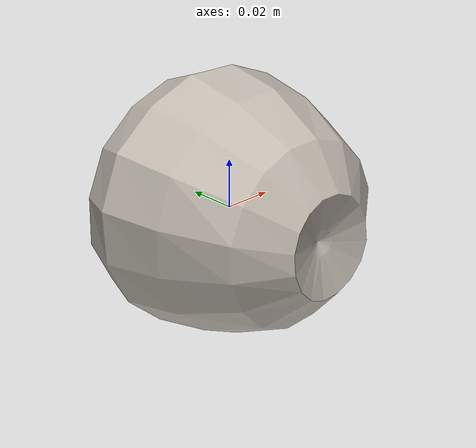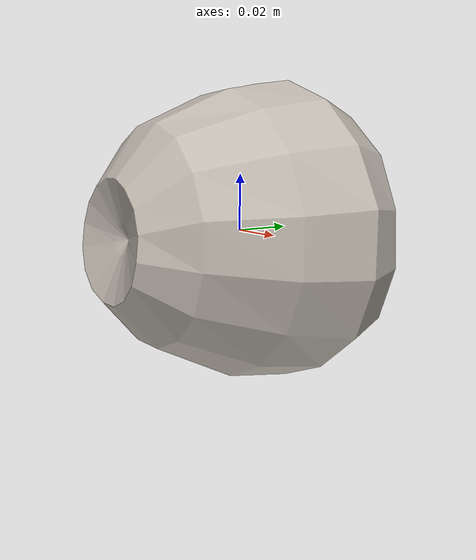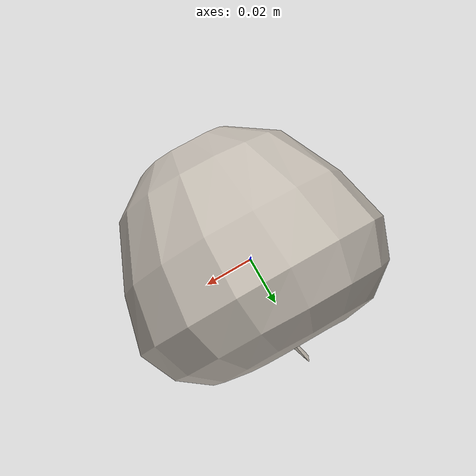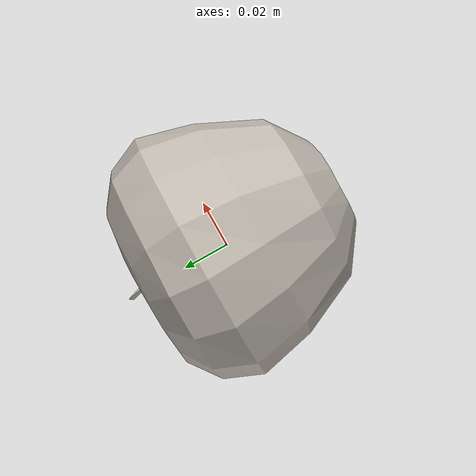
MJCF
<mujoco model="Apple_2">
  <compiler autolimits="true" boundmass="0.01" angle="radian"/>
  <default>
    <default class="/">
      <default class="__VISUAL_MJT__">
        <geom contype="0" conaffinity="0" group="0"/>
      </default>
      <default class="__STRUCTURAL_MJT__">
        <geom contype="8" conaffinity="15" group="4" friction="0.90000000000000002 0.90000000000000002 0.001" solref="0.025000000000000001 1" solimp="0.998 0.998 0.001"/>
      </default>
      <default class="__DYNAMIC_MJT__">
        <geom contype="1" conaffinity="15" group="4" friction="0.90000000000000002 0.90000000000000002 0.001" solref="0.025000000000000001 1" solimp="0.998 0.998 0.001"/>
      </default>
    </default>
  </default>
  <asset>
    <texture name="Apple1_Mat2" type="2d" file="Apple1_AlbedoTransparency2.png"/>
    <material name="material_Apple1_Mat2" class="/" texture="Apple1_Mat2" specular="0.5" shininess="0.5" rgba="1 1 1 1"/>
    <mesh name="Apple_2_apple_a2" class="/" file="Apple_2_apple_a2/Apple_2_apple_a2.obj" scale="1 1 1"/>
  </asset>
  <worldbody>
    <body name="Apple_2">
      <joint name="Apple_2_free" class="/" type="free" pos="0 0 0" axis="0 0 1" stiffness="0" range="0 0" armature="0" damping="0.10000000000000001" frictionloss="0"/>
      <body name="Apple_2_apple_a2" pos="0.00080000000000000004 -0.0032000000000000002 0" quat="1 0 0 0">
        <geom name="Apple_2_apple_a2" class="__VISUAL_MJT__" type="mesh" material="material_Apple1_Mat2" shellinertia="false" mesh="Apple_2_apple_a2"/>
        <geom name="Apple_2_PrimitiveCollider_0" class="__DYNAMIC_MJT__" type="capsule" size="0.053474020212888718 0.0023809894919395447" rgba="0 1 0 1" pos="0.00079999997979030013 0.0031999999191612005 0" quat="0.70710678118654757 0.70710678118654746 0 0"/>
      </body>
    </body>
  </worldbody>
</mujoco>
